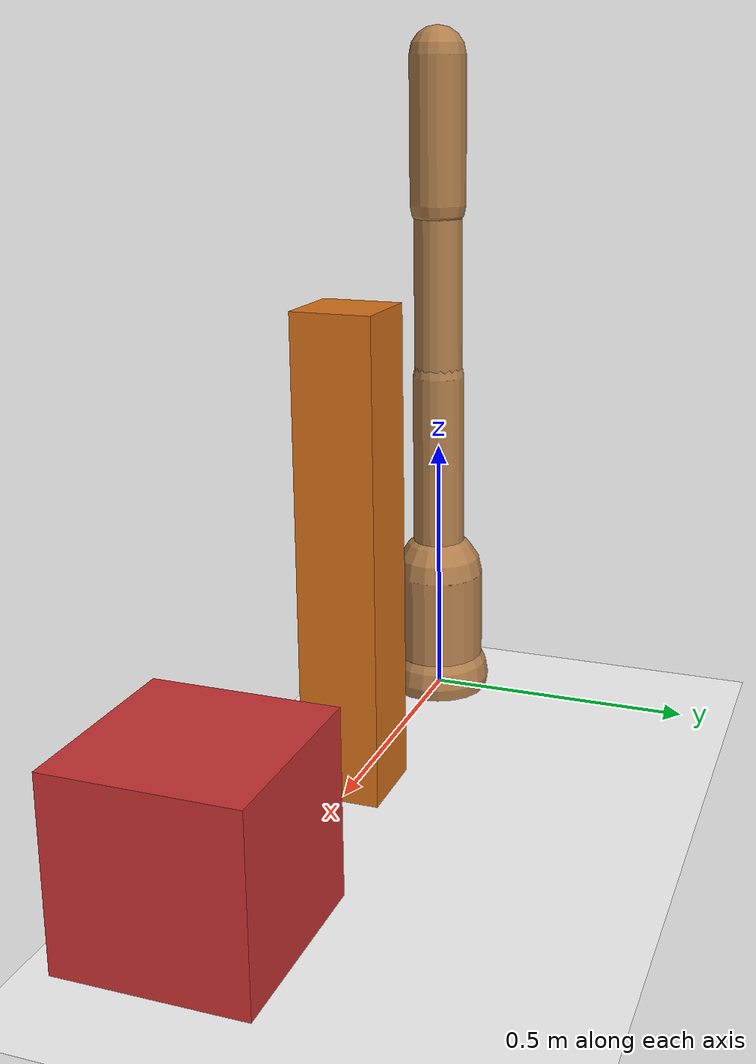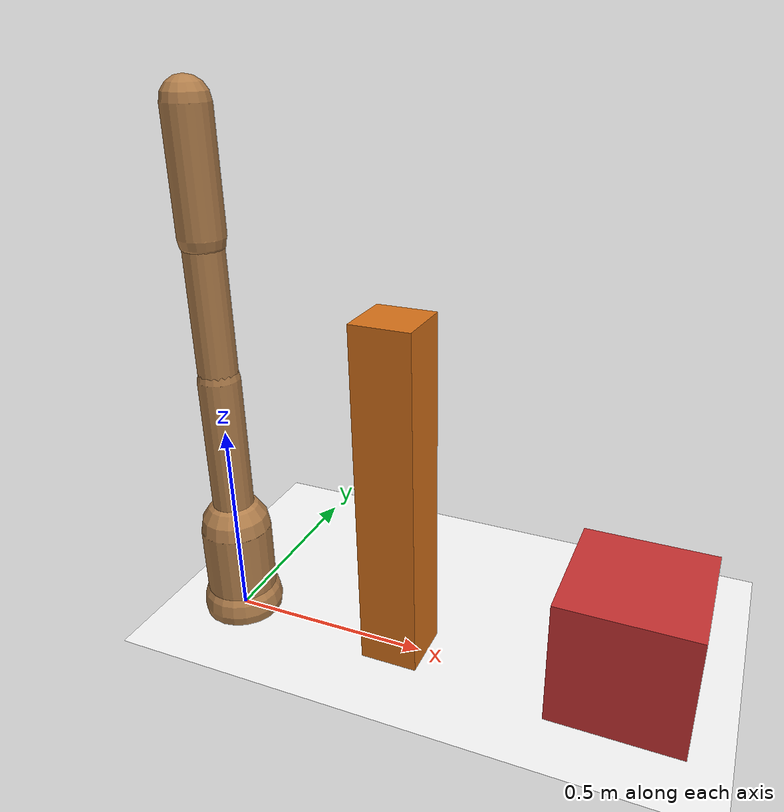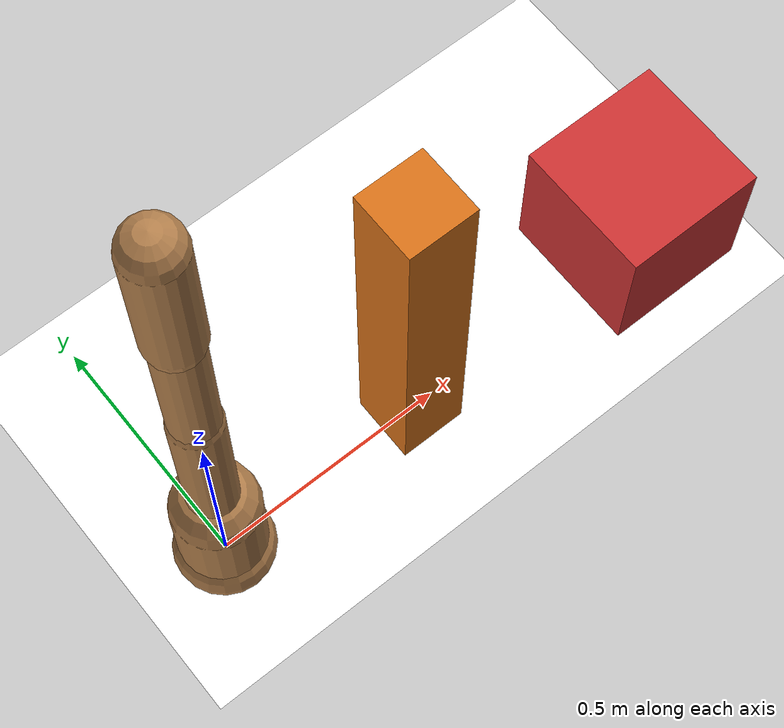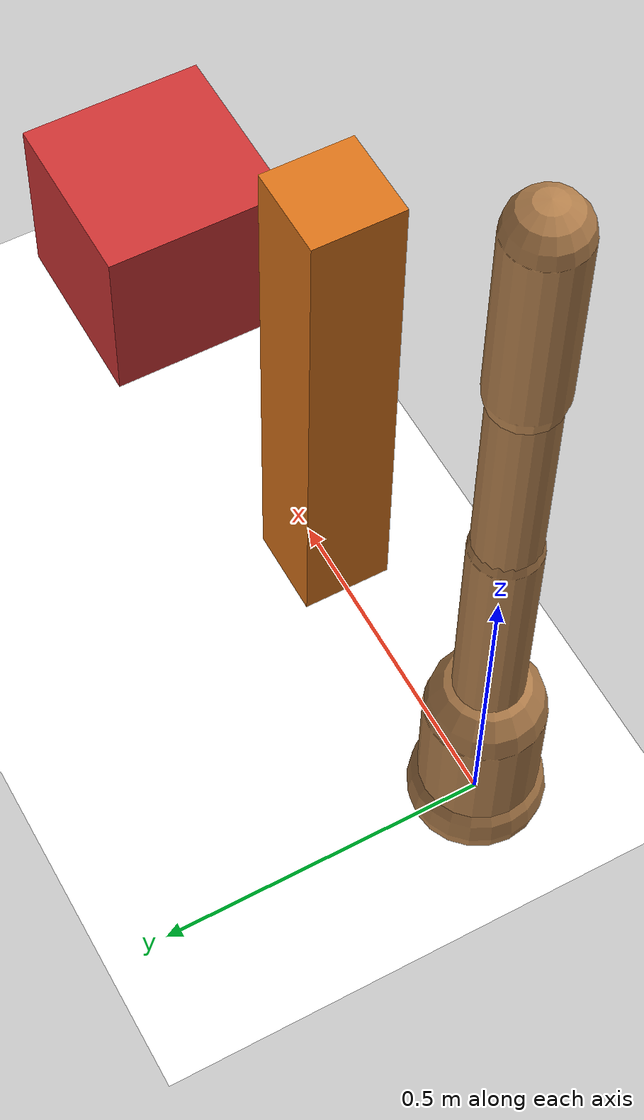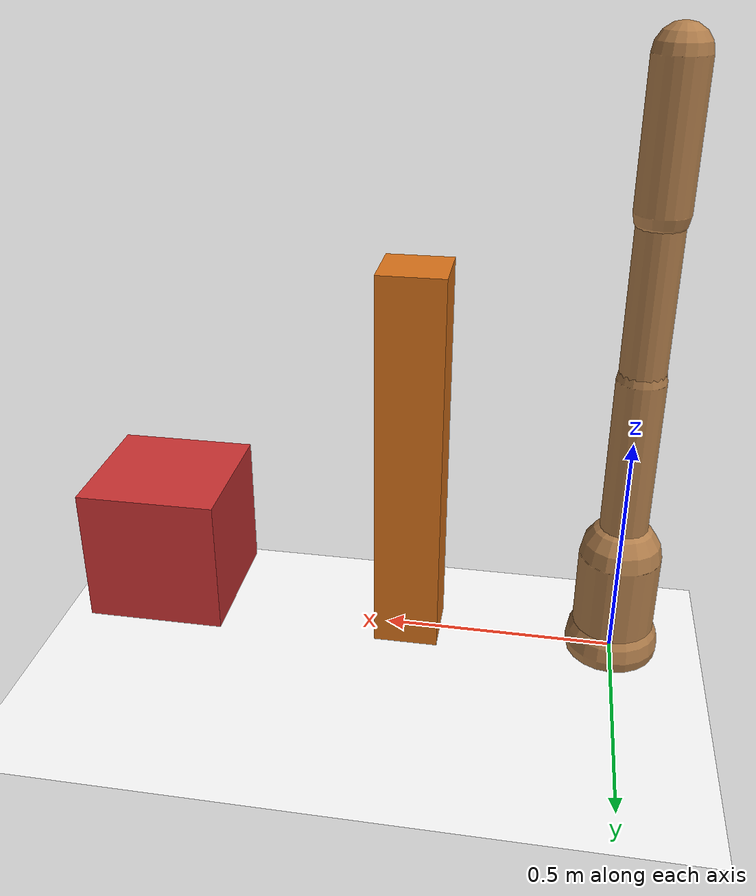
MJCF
<mujoco model="4-joint_vertical_serial_arm_(f">
  <asset>
    <texture name="skybox" type="skybox" builtin="gradient" rgb1=".2 .3 .4" rgb2="0 0 0" width="800" height="800" mark="random" markrgb="1 1 1" />
    <texture name="grid" type="2d" builtin="checker" rgb1=".2 .1 .2" rgb2=".3 .2 .3" width="300" height="300" mark="edge" markrgb=".3 .2 .3" />
    <material name="grid" texture="grid" texrepeat="1 1" texuniform="true" reflectance=".2" />
    <material name="self" rgba=".7 .5 .3 1" />
  </asset>
  <visual>
    <headlight ambient=".4 .4 .4" diffuse=".8 .8 .8" specular="0 0 0" />
    <map znear=".001" />
    <quality shadowsize="16384" />
  </visual>
  <compiler angle="degree" />
  <option integrator="RK4" timestep="0.01" />
  <default>
    <joint armature="1" damping="1" limited="true" />
    <geom conaffinity="0" condim="3" density="5.0" friction="1.0 0.5 0.5" margin="0.01" rgba=".7 .5 .3 1" />
  </default>
  <worldbody>
    <light cutoff="100" diffuse="1 1 1" dir="0.3 0 -1.3" directional="true" exponent="1" pos="-30 0 130" specular=".1 .1 .1" />
    <geom conaffinity="1" condim="3" name="floor" pos="0 0 0" rgba="1 1 1 1" size="200 200 .125" type="plane" material="grid" />
    <body name="0" pos="0.000000 0.000000 0.020000">
      <camera name="track" mode="trackcom" pos="0 -3 0.3" xyaxes="1 0 0 0 0 1" />
      <geom pos="0 0 0" size="0.1" type="sphere" />
      <body name="1" pos="0.000000 0.000000 0.000000">
        <joint name="1_joint" type="hinge" pos="0 0 0" axis="0.000000 0.000000 1.000000" range="-180.0 180.0" />
        <geom type="capsule" fromto="0.000000 0.000000 0.000000  0.000000 0.000000 0.219500" size="0.0865" />
        <body name="11" pos="0.000000 0.000000 0.219500">
          <joint name="11_joint" type="hinge" pos="0 0 0" axis="0.000000 1.000000 0.000000" range="-90.0 90.0" />
          <geom type="capsule" fromto="0.000000 0.000000 0.000000  0.000000 0.000000 0.403100" size="0.0501" />
          <body name="111" pos="0.000000 0.000000 0.403100">
            <joint name="111_joint" type="hinge" pos="0 0 0" axis="0.000000 1.000000 0.000000" range="-90.0 90.0" />
            <geom type="capsule" fromto="0.000000 0.000000 0.000000  0.000000 0.000000 0.330800" size="0.0466" />
            <body name="1111" pos="0.000000 0.000000 0.330800">
              <joint name="1111_joint" type="hinge" pos="0 0 0" axis="0.000000 1.000000 0.000000" range="-90.0 90.0" />
              <geom type="capsule" fromto="0.000000 0.000000 0.000000  0.000000 0.000000 0.276300" size="0.0535" />
            </body>
          </body>
        </body>
      </body>
    </body>
    <body name="cube" pos="1.000000 0.000000 0.200000">
      <joint name="cube_slide" type="slide" axis="1 0 0" damping="2.0" range="-2.0 200.0" />
      <joint name="cube_slide2" type="slide" axis="0 1 0" damping="2.0" range="-100.0 100.0" />
      <geom name="cube_geom" type="box" size="0.15 0.15 0.15" rgba="0.8 0.2 0.2 1.0" friction="0.5 0.1 0.1" density="100" contype="1" conaffinity="1" />
    </body>
  <body name="obstacle" pos="0.4500 0.0000 0.4250"><geom name="obstacle_geom" type="box" pos="0 0 0" size="0.0700 0.0700 0.4250" rgba="0.85 0.45 0.10 1" contype="1" conaffinity="3" friction="0.5 0.1 0.1" solref="0.02 0.25" /></body></worldbody>
  <actuator>
    <motor ctrllimited="true" ctrlrange="-1.0 1.0" joint="1_joint" gear="100.0" name="1_joint" />
    <motor ctrllimited="true" ctrlrange="-1.0 1.0" joint="11_joint" gear="100.0" name="11_joint" />
    <motor ctrllimited="true" ctrlrange="-1.0 1.0" joint="111_joint" gear="100.0" name="111_joint" />
    <motor ctrllimited="true" ctrlrange="-1.0 1.0" joint="1111_joint" gear="100.0" name="1111_joint" />
  </actuator>
</mujoco>
